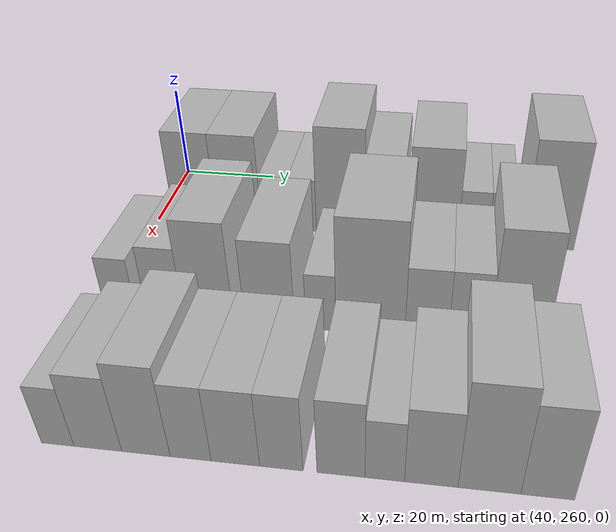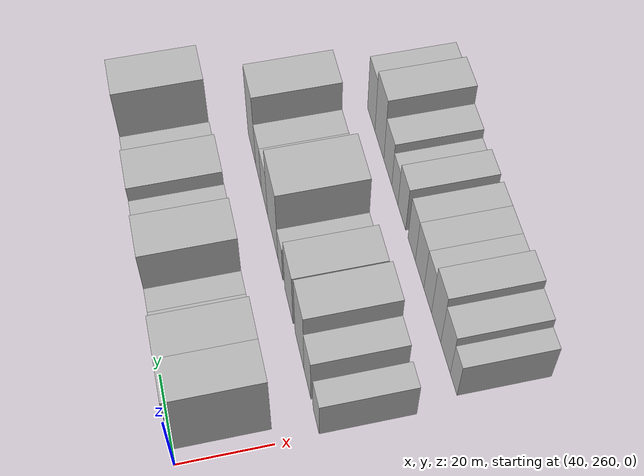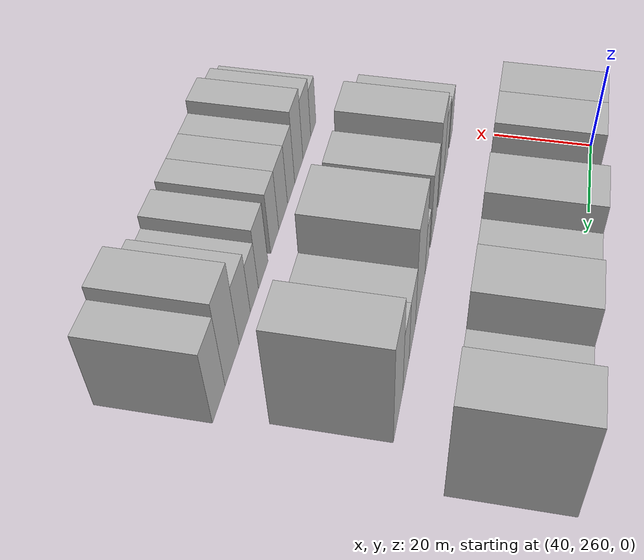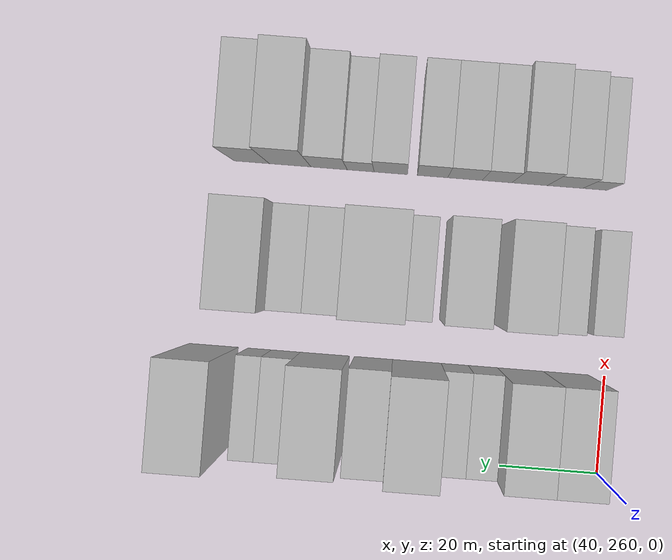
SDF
<sdf version="1.6">
 <world name="default">
  <model name="building_68">
   <static>1</static>
   <pose>50.0000 267.9615 0 0.000000 0.000000 0.000000</pose>
   <link name="link">
    <pose>0 0 10.50 0 0 0</pose>
    <collision name="collision"><geometry><box><size>20.0000 9.2793 21.0000</size></box></geometry></collision>
    <visual name="visual">
     <cast_shadows>0</cast_shadows>
     <geometry><box><size>20.0000 9.2793 21.0000</size></box></geometry>
     <material>
      <script>
       <uri>model://HANNAS_wall/materials/scripts</uri>
       <uri>model://HANNAS_wall/materials/textures</uri>
       <name>vrc/HANNAS_wall</name>
      </script>
     </material>
    </visual>
   </link>
  </model>
  <model name="building_69">
   <static>1</static>
   <pose>50.0000 277.3104 0 0.000000 0.000000 0.000000</pose>
   <link name="link">
    <pose>0 0 10.50 0 0 0</pose>
    <collision name="collision"><geometry><box><size>20.0000 9.4185 21.0000</size></box></geometry></collision>
    <visual name="visual">
     <cast_shadows>0</cast_shadows>
     <geometry><box><size>20.0000 9.4185 21.0000</size></box></geometry>
     <material>
      <script>
       <uri>model://HANNAS_wall/materials/scripts</uri>
       <uri>model://HANNAS_wall/materials/textures</uri>
       <name>vrc/HANNAS_wall</name>
      </script>
     </material>
    </visual>
   </link>
  </model>
  <model name="building_70">
   <static>1</static>
   <pose>50.0000 285.0077 0 0.000000 0.000000 0.000000</pose>
   <link name="link">
    <pose>0 0 6.00 0 0 0</pose>
    <collision name="collision"><geometry><box><size>20.0000 5.9760 12.0000</size></box></geometry></collision>
    <visual name="visual">
     <cast_shadows>0</cast_shadows>
     <geometry><box><size>20.0000 5.9760 12.0000</size></box></geometry>
     <material>
      <script>
       <uri>model://HANNAS_wall/materials/scripts</uri>
       <uri>model://HANNAS_wall/materials/textures</uri>
       <name>vrc/HANNAS_wall</name>
      </script>
     </material>
    </visual>
   </link>
  </model>
  <model name="building_71">
   <static>1</static>
   <pose>50.0000 290.7769 0 0.000000 0.000000 0.000000</pose>
   <link name="link">
    <pose>0 0 6.00 0 0 0</pose>
    <collision name="collision"><geometry><box><size>20.0000 5.5625 12.0000</size></box></geometry></collision>
    <visual name="visual">
     <cast_shadows>0</cast_shadows>
     <geometry><box><size>20.0000 5.5625 12.0000</size></box></geometry>
     <material>
      <script>
       <uri>model://HANNAS_wall/materials/scripts</uri>
       <uri>model://HANNAS_wall/materials/textures</uri>
       <name>vrc/HANNAS_wall</name>
      </script>
     </material>
    </visual>
   </link>
  </model>
  <model name="building_72">
   <static>1</static>
   <pose>50.0000 298.5541 0 0.000000 0.000000 0.000000</pose>
   <link name="link">
    <pose>0 0 12.00 0 0 0</pose>
    <collision name="collision"><geometry><box><size>20.0000 9.9918 24.0000</size></box></geometry></collision>
    <visual name="visual">
     <cast_shadows>0</cast_shadows>
     <geometry><box><size>20.0000 9.9918 24.0000</size></box></geometry>
     <material>
      <script>
       <uri>model://HANNAS_wall/materials/scripts</uri>
       <uri>model://HANNAS_wall/materials/textures</uri>
       <name>vrc/HANNAS_wall</name>
      </script>
     </material>
    </visual>
   </link>
  </model>
  <model name="building_73">
   <static>1</static>
   <pose>50.0000 307.4494 0 0.000000 0.000000 0.000000</pose>
   <link name="link">
    <pose>0 0 9.00 0 0 0</pose>
    <collision name="collision"><geometry><box><size>20.0000 7.7990 18.0000</size></box></geometry></collision>
    <visual name="visual">
     <cast_shadows>0</cast_shadows>
     <geometry><box><size>20.0000 7.7990 18.0000</size></box></geometry>
     <material>
      <script>
       <uri>model://HANNAS_wall/materials/scripts</uri>
       <uri>model://HANNAS_wall/materials/textures</uri>
       <name>vrc/HANNAS_wall</name>
      </script>
     </material>
    </visual>
   </link>
  </model>
  <model name="building_74">
   <static>1</static>
   <pose>50.0000 317.3789 0 0.000000 0.000000 0.000000</pose>
   <link name="link">
    <pose>0 0 10.50 0 0 0</pose>
    <collision name="collision"><geometry><box><size>20.0000 10.0600 21.0000</size></box></geometry></collision>
    <visual name="visual">
     <cast_shadows>0</cast_shadows>
     <geometry><box><size>20.0000 10.0600 21.0000</size></box></geometry>
     <material>
      <script>
       <uri>model://HANNAS_wall/materials/scripts</uri>
       <uri>model://HANNAS_wall/materials/textures</uri>
       <name>vrc/HANNAS_wall</name>
      </script>
     </material>
    </visual>
   </link>
  </model>
  <model name="building_75">
   <static>1</static>
   <pose>50.0000 325.3806 0 0.000000 0.000000 0.000000</pose>
   <link name="link">
    <pose>0 0 6.00 0 0 0</pose>
    <collision name="collision"><geometry><box><size>20.0000 5.9433 12.0000</size></box></geometry></collision>
    <visual name="visual">
     <cast_shadows>0</cast_shadows>
     <geometry><box><size>20.0000 5.9433 12.0000</size></box></geometry>
     <material>
      <script>
       <uri>model://HANNAS_wall/materials/scripts</uri>
       <uri>model://HANNAS_wall/materials/textures</uri>
       <name>vrc/HANNAS_wall</name>
      </script>
     </material>
    </visual>
   </link>
  </model>
  <model name="building_76">
   <static>1</static>
   <pose>50.0000 330.7910 0 0.000000 0.000000 0.000000</pose>
   <link name="link">
    <pose>0 0 6.00 0 0 0</pose>
    <collision name="collision"><geometry><box><size>20.0000 4.8773 12.0000</size></box></geometry></collision>
    <visual name="visual">
     <cast_shadows>0</cast_shadows>
     <geometry><box><size>20.0000 4.8773 12.0000</size></box></geometry>
     <material>
      <script>
       <uri>model://HANNAS_wall/materials/scripts</uri>
       <uri>model://HANNAS_wall/materials/textures</uri>
       <name>vrc/HANNAS_wall</name>
      </script>
     </material>
    </visual>
   </link>
  </model>
  <model name="building_77">
   <static>1</static>
   <pose>50.0000 340.2651 0 0.000000 0.000000 0.000000</pose>
   <link name="link">
    <pose>0 0 12.00 0 0 0</pose>
    <collision name="collision"><geometry><box><size>20.0000 10.0709 24.0000</size></box></geometry></collision>
    <visual name="visual">
     <cast_shadows>0</cast_shadows>
     <geometry><box><size>20.0000 10.0709 24.0000</size></box></geometry>
     <material>
      <script>
       <uri>model://HANNAS_wall/materials/scripts</uri>
       <uri>model://HANNAS_wall/materials/textures</uri>
       <name>vrc/HANNAS_wall</name>
      </script>
     </material>
    </visual>
   </link>
  </model>
  <model name="building_145">
   <static>1</static>
   <pose>79.0000 263.1649 0 0.000000 0.000000 0.000000</pose>
   <link name="link">
    <pose>0 0 6.00 0 0 0</pose>
    <collision name="collision"><geometry><box><size>20.0000 5.7350 12.0000</size></box></geometry></collision>
    <visual name="visual">
     <cast_shadows>0</cast_shadows>
     <geometry><box><size>20.0000 5.7350 12.0000</size></box></geometry>
     <material>
      <script>
       <uri>model://HANNAS_wall/materials/scripts</uri>
       <uri>model://HANNAS_wall/materials/textures</uri>
       <name>vrc/HANNAS_wall</name>
      </script>
     </material>
    </visual>
   </link>
  </model>
  <model name="building_146">
   <static>1</static>
   <pose>79.0000 271.3959 0 0.000000 0.000000 0.000000</pose>
   <link name="link">
    <pose>0 0 7.50 0 0 0</pose>
    <collision name="collision"><geometry><box><size>20.0000 6.7271 15.0000</size></box></geometry></collision>
    <visual name="visual">
     <cast_shadows>0</cast_shadows>
     <geometry><box><size>20.0000 6.7271 15.0000</size></box></geometry>
     <material>
      <script>
       <uri>model://HANNAS_wall/materials/scripts</uri>
       <uri>model://HANNAS_wall/materials/textures</uri>
       <name>vrc/HANNAS_wall</name>
      </script>
     </material>
    </visual>
   </link>
  </model>
  <model name="building_147">
   <static>1</static>
   <pose>79.0000 279.2675 0 0.000000 0.000000 0.000000</pose>
   <link name="link">
    <pose>0 0 10.50 0 0 0</pose>
    <collision name="collision"><geometry><box><size>20.0000 9.0162 21.0000</size></box></geometry></collision>
    <visual name="visual">
     <cast_shadows>0</cast_shadows>
     <geometry><box><size>20.0000 9.0162 21.0000</size></box></geometry>
     <material>
      <script>
       <uri>model://HANNAS_wall/materials/scripts</uri>
       <uri>model://HANNAS_wall/materials/textures</uri>
       <name>vrc/HANNAS_wall</name>
      </script>
     </material>
    </visual>
   </link>
  </model>
  <model name="building_148">
   <static>1</static>
   <pose>79.0000 290.2084 0 0.000000 0.000000 0.000000</pose>
   <link name="link">
    <pose>0 0 9.00 0 0 0</pose>
    <collision name="collision"><geometry><box><size>20.0000 8.8655 18.0000</size></box></geometry></collision>
    <visual name="visual">
     <cast_shadows>0</cast_shadows>
     <geometry><box><size>20.0000 8.8655 18.0000</size></box></geometry>
     <material>
      <script>
       <uri>model://HANNAS_wall/materials/scripts</uri>
       <uri>model://HANNAS_wall/materials/textures</uri>
       <name>vrc/HANNAS_wall</name>
      </script>
     </material>
    </visual>
   </link>
  </model>
  <model name="building_149">
   <static>1</static>
   <pose>79.0000 299.2640 0 0.000000 0.000000 0.000000</pose>
   <link name="link">
    <pose>0 0 6.00 0 0 0</pose>
    <collision name="collision"><geometry><box><size>20.0000 5.2457 12.0000</size></box></geometry></collision>
    <visual name="visual">
     <cast_shadows>0</cast_shadows>
     <geometry><box><size>20.0000 5.2457 12.0000</size></box></geometry>
     <material>
      <script>
       <uri>model://HANNAS_wall/materials/scripts</uri>
       <uri>model://HANNAS_wall/materials/textures</uri>
       <name>vrc/HANNAS_wall</name>
      </script>
     </material>
    </visual>
   </link>
  </model>
  <model name="building_150">
   <static>1</static>
   <pose>79.0000 307.8583 0 0.000000 0.000000 0.000000</pose>
   <link name="link">
    <pose>0 0 12.00 0 0 0</pose>
    <collision name="collision"><geometry><box><size>20.0000 11.9430 24.0000</size></box></geometry></collision>
    <visual name="visual">
     <cast_shadows>0</cast_shadows>
     <geometry><box><size>20.0000 11.9430 24.0000</size></box></geometry>
     <material>
      <script>
       <uri>model://HANNAS_wall/materials/scripts</uri>
       <uri>model://HANNAS_wall/materials/textures</uri>
       <name>vrc/HANNAS_wall</name>
      </script>
     </material>
    </visual>
   </link>
  </model>
  <model name="building_151">
   <static>1</static>
   <pose>79.0000 317.4902 0 0.000000 0.000000 0.000000</pose>
   <link name="link">
    <pose>0 0 7.50 0 0 0</pose>
    <collision name="collision"><geometry><box><size>20.0000 7.3208 15.0000</size></box></geometry></collision>
    <visual name="visual">
     <cast_shadows>0</cast_shadows>
     <geometry><box><size>20.0000 7.3208 15.0000</size></box></geometry>
     <material>
      <script>
       <uri>model://HANNAS_wall/materials/scripts</uri>
       <uri>model://HANNAS_wall/materials/textures</uri>
       <name>vrc/HANNAS_wall</name>
      </script>
     </material>
    </visual>
   </link>
  </model>
  <model name="building_152">
   <static>1</static>
   <pose>79.0000 324.5305 0 0.000000 0.000000 0.000000</pose>
   <link name="link">
    <pose>0 0 7.50 0 0 0</pose>
    <collision name="collision"><geometry><box><size>20.0000 6.7599 15.0000</size></box></geometry></collision>
    <visual name="visual">
     <cast_shadows>0</cast_shadows>
     <geometry><box><size>20.0000 6.7599 15.0000</size></box></geometry>
     <material>
      <script>
       <uri>model://HANNAS_wall/materials/scripts</uri>
       <uri>model://HANNAS_wall/materials/textures</uri>
       <name>vrc/HANNAS_wall</name>
      </script>
     </material>
    </visual>
   </link>
  </model>
  <model name="building_153">
   <static>1</static>
   <pose>79.0000 332.7271 0 0.000000 0.000000 0.000000</pose>
   <link name="link">
    <pose>0 0 12.00 0 0 0</pose>
    <collision name="collision"><geometry><box><size>20.0000 9.6332 24.0000</size></box></geometry></collision>
    <visual name="visual">
     <cast_shadows>0</cast_shadows>
     <geometry><box><size>20.0000 9.6332 24.0000</size></box></geometry>
     <material>
      <script>
       <uri>model://HANNAS_wall/materials/scripts</uri>
       <uri>model://HANNAS_wall/materials/textures</uri>
       <name>vrc/HANNAS_wall</name>
      </script>
     </material>
    </visual>
   </link>
  </model>
  <model name="building_225">
   <static>1</static>
   <pose>108.0000 264.9707 0 0.000000 0.000000 0.000000</pose>
   <link name="link">
    <pose>0 0 6.00 0 0 0</pose>
    <collision name="collision"><geometry><box><size>20.0000 4.9889 12.0000</size></box></geometry></collision>
    <visual name="visual">
     <cast_shadows>0</cast_shadows>
     <geometry><box><size>20.0000 4.9889 12.0000</size></box></geometry>
     <material>
      <script>
       <uri>model://HANNAS_wall/materials/scripts</uri>
       <uri>model://HANNAS_wall/materials/textures</uri>
       <name>vrc/HANNAS_wall</name>
      </script>
     </material>
    </visual>
   </link>
  </model>
  <model name="building_226">
   <static>1</static>
   <pose>108.0000 271.1001 0 0.000000 0.000000 0.000000</pose>
   <link name="link">
    <pose>0 0 7.50 0 0 0</pose>
    <collision name="collision"><geometry><box><size>20.0000 7.2700 15.0000</size></box></geometry></collision>
    <visual name="visual">
     <cast_shadows>0</cast_shadows>
     <geometry><box><size>20.0000 7.2700 15.0000</size></box></geometry>
     <material>
      <script>
       <uri>model://HANNAS_wall/materials/scripts</uri>
       <uri>model://HANNAS_wall/materials/textures</uri>
       <name>vrc/HANNAS_wall</name>
      </script>
     </material>
    </visual>
   </link>
  </model>
  <model name="building_227">
   <static>1</static>
   <pose>108.0000 278.3805 0 0.000000 0.000000 0.000000</pose>
   <link name="link">
    <pose>0 0 9.00 0 0 0</pose>
    <collision name="collision"><geometry><box><size>20.0000 7.2907 18.0000</size></box></geometry></collision>
    <visual name="visual">
     <cast_shadows>0</cast_shadows>
     <geometry><box><size>20.0000 7.2907 18.0000</size></box></geometry>
     <material>
      <script>
       <uri>model://HANNAS_wall/materials/scripts</uri>
       <uri>model://HANNAS_wall/materials/textures</uri>
       <name>vrc/HANNAS_wall</name>
      </script>
     </material>
    </visual>
   </link>
  </model>
  <model name="building_228">
   <static>1</static>
   <pose>108.0000 285.0707 0 0.000000 0.000000 0.000000</pose>
   <link name="link">
    <pose>0 0 7.50 0 0 0</pose>
    <collision name="collision"><geometry><box><size>20.0000 6.0897 15.0000</size></box></geometry></collision>
    <visual name="visual">
     <cast_shadows>0</cast_shadows>
     <geometry><box><size>20.0000 6.0897 15.0000</size></box></geometry>
     <material>
      <script>
       <uri>model://HANNAS_wall/materials/scripts</uri>
       <uri>model://HANNAS_wall/materials/textures</uri>
       <name>vrc/HANNAS_wall</name>
      </script>
     </material>
    </visual>
   </link>
  </model>
  <model name="building_229">
   <static>1</static>
   <pose>108.0000 291.6622 0 0.000000 0.000000 0.000000</pose>
   <link name="link">
    <pose>0 0 7.50 0 0 0</pose>
    <collision name="collision"><geometry><box><size>20.0000 7.0933 15.0000</size></box></geometry></collision>
    <visual name="visual">
     <cast_shadows>0</cast_shadows>
     <geometry><box><size>20.0000 7.0933 15.0000</size></box></geometry>
     <material>
      <script>
       <uri>model://HANNAS_wall/materials/scripts</uri>
       <uri>model://HANNAS_wall/materials/textures</uri>
       <name>vrc/HANNAS_wall</name>
      </script>
     </material>
    </visual>
   </link>
  </model>
  <model name="building_230">
   <static>1</static>
   <pose>108.0000 298.3383 0 0.000000 0.000000 0.000000</pose>
   <link name="link">
    <pose>0 0 7.50 0 0 0</pose>
    <collision name="collision"><geometry><box><size>20.0000 6.2589 15.0000</size></box></geometry></collision>
    <visual name="visual">
     <cast_shadows>0</cast_shadows>
     <geometry><box><size>20.0000 6.2589 15.0000</size></box></geometry>
     <material>
      <script>
       <uri>model://HANNAS_wall/materials/scripts</uri>
       <uri>model://HANNAS_wall/materials/textures</uri>
       <name>vrc/HANNAS_wall</name>
      </script>
     </material>
    </visual>
   </link>
  </model>
  <model name="building_231">
   <static>1</static>
   <pose>108.0000 306.8864 0 0.000000 0.000000 0.000000</pose>
   <link name="link">
    <pose>0 0 7.50 0 0 0</pose>
    <collision name="collision"><geometry><box><size>20.0000 6.8372 15.0000</size></box></geometry></collision>
    <visual name="visual">
     <cast_shadows>0</cast_shadows>
     <geometry><box><size>20.0000 6.8372 15.0000</size></box></geometry>
     <material>
      <script>
       <uri>model://HANNAS_wall/materials/scripts</uri>
       <uri>model://HANNAS_wall/materials/textures</uri>
       <name>vrc/HANNAS_wall</name>
      </script>
     </material>
    </visual>
   </link>
  </model>
  <model name="building_232">
   <static>1</static>
   <pose>108.0000 313.0705 0 0.000000 0.000000 0.000000</pose>
   <link name="link">
    <pose>0 0 6.00 0 0 0</pose>
    <collision name="collision"><geometry><box><size>20.0000 5.5311 12.0000</size></box></geometry></collision>
    <visual name="visual">
     <cast_shadows>0</cast_shadows>
     <geometry><box><size>20.0000 5.5311 12.0000</size></box></geometry>
     <material>
      <script>
       <uri>model://HANNAS_wall/materials/scripts</uri>
       <uri>model://HANNAS_wall/materials/textures</uri>
       <name>vrc/HANNAS_wall</name>
      </script>
     </material>
    </visual>
   </link>
  </model>
  <model name="building_233">
   <static>1</static>
   <pose>108.0000 319.5391 0 0.000000 0.000000 0.000000</pose>
   <link name="link">
    <pose>0 0 7.50 0 0 0</pose>
    <collision name="collision"><geometry><box><size>20.0000 7.4061 15.0000</size></box></geometry></collision>
    <visual name="visual">
     <cast_shadows>0</cast_shadows>
     <geometry><box><size>20.0000 7.4061 15.0000</size></box></geometry>
     <material>
      <script>
       <uri>model://HANNAS_wall/materials/scripts</uri>
       <uri>model://HANNAS_wall/materials/textures</uri>
       <name>vrc/HANNAS_wall</name>
      </script>
     </material>
    </visual>
   </link>
  </model>
  <model name="building_234">
   <static>1</static>
   <pose>108.0000 327.5272 0 0.000000 0.000000 0.000000</pose>
   <link name="link">
    <pose>0 0 10.50 0 0 0</pose>
    <collision name="collision"><geometry><box><size>20.0000 8.5701 21.0000</size></box></geometry></collision>
    <visual name="visual">
     <cast_shadows>0</cast_shadows>
     <geometry><box><size>20.0000 8.5701 21.0000</size></box></geometry>
     <material>
      <script>
       <uri>model://HANNAS_wall/materials/scripts</uri>
       <uri>model://HANNAS_wall/materials/textures</uri>
       <name>vrc/HANNAS_wall</name>
      </script>
     </material>
    </visual>
   </link>
  </model>
  <model name="building_235">
   <static>1</static>
   <pose>108.0000 335.4341 0 0.000000 0.000000 0.000000</pose>
   <link name="link">
    <pose>0 0 9.00 0 0 0</pose>
    <collision name="collision"><geometry><box><size>20.0000 7.2437 18.0000</size></box></geometry></collision>
    <visual name="visual">
     <cast_shadows>0</cast_shadows>
     <geometry><box><size>20.0000 7.2437 18.0000</size></box></geometry>
     <material>
      <script>
       <uri>model://HANNAS_wall/materials/scripts</uri>
       <uri>model://HANNAS_wall/materials/textures</uri>
       <name>vrc/HANNAS_wall</name>
      </script>
     </material>
    </visual>
   </link>
  </model>
 </world>
</sdf>
